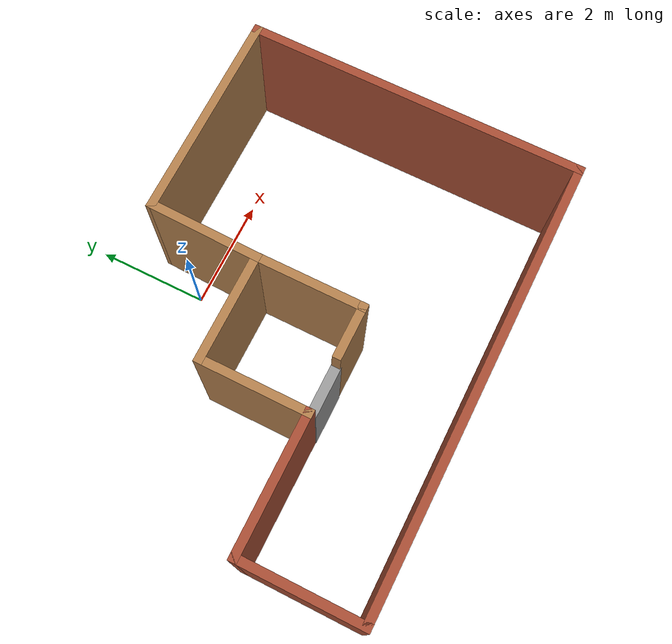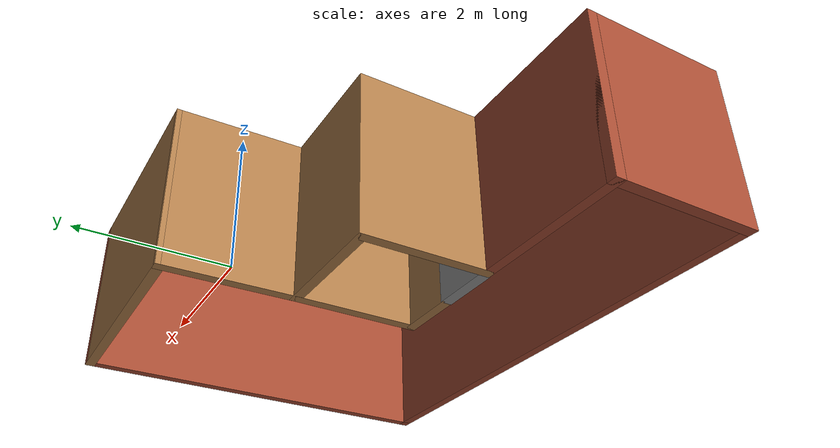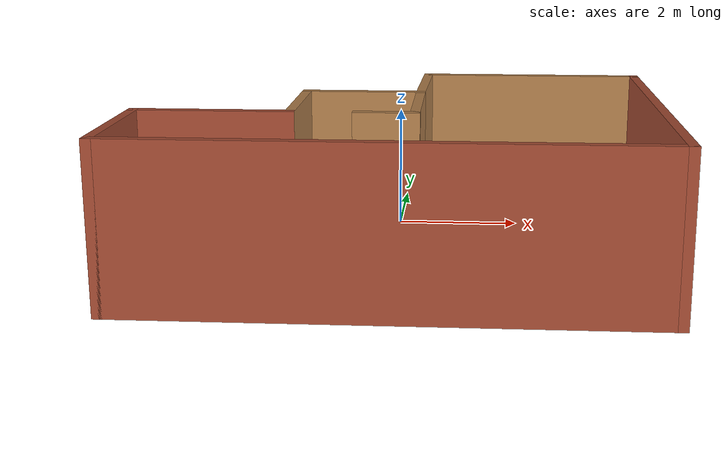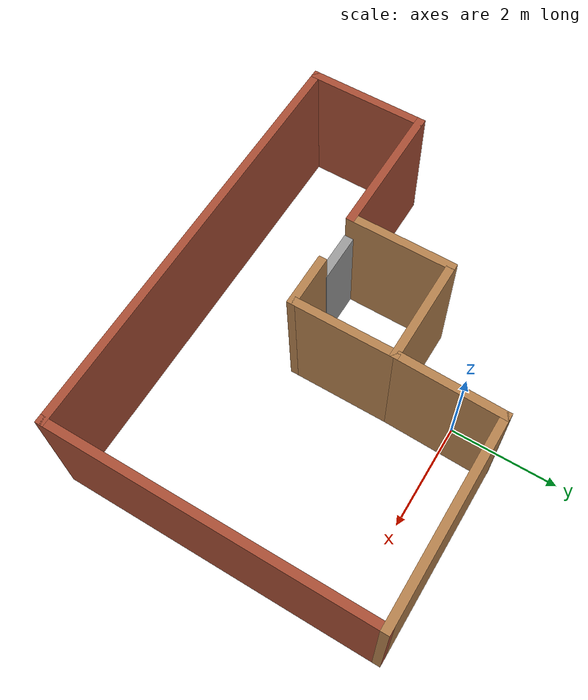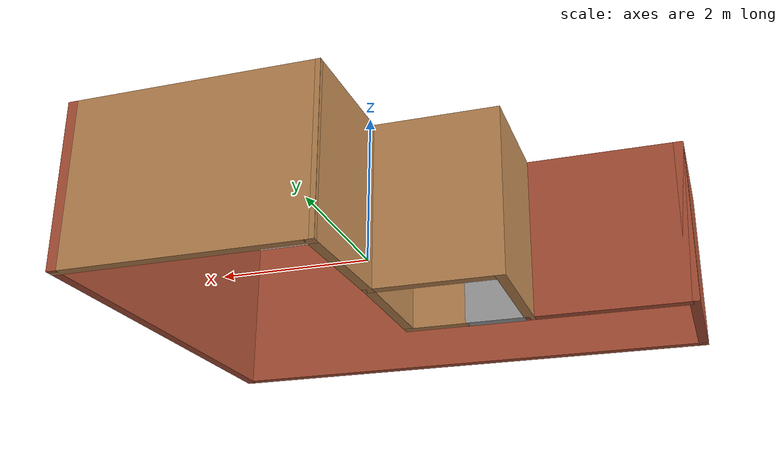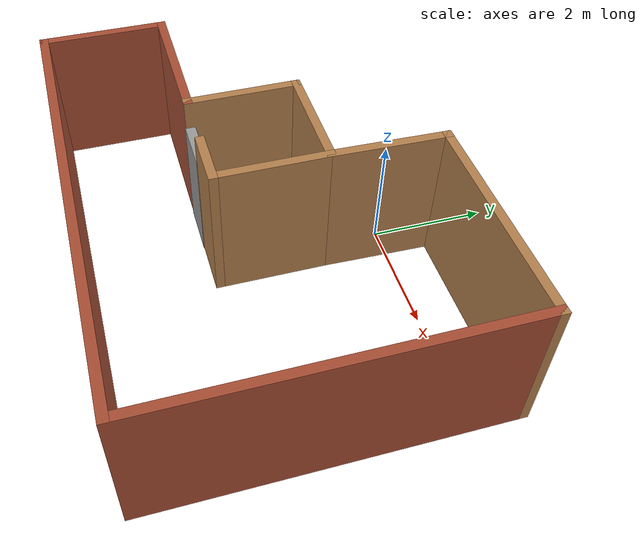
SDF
<?xml version='1.0'?>
<sdf version='1.7'>
  <model name='Pieza_simple'>
    <pose>0.115 -2.11403 0 0 -0 0</pose>
    <link name='Door_0'>
      <collision name='Door_0_Collision'>
        <geometry>
          <box>
            <size>0.9 0.17 2</size>
          </box>
        </geometry>
        <pose>0 0 1 0 -0 0</pose>
      </collision>
      <visual name='Door_0_Visual'>
        <pose>0 0 1 0 -0 0</pose>
        <geometry>
          <box>
            <size>0.9 0.17 2</size>
          </box>
        </geometry>
        <material>
          <script>
            <uri>file://media/materials/scripts/gazebo.material</uri>
            <name>Gazebo/Grey</name>
          </script>
        </material>
      </visual>
      <pose>-1.065 -0.825973 0 0 -0 0</pose>
    </link>
    <link name='Wall_1'>
      <collision name='Wall_1_Collision'>
        <geometry>
          <box>
            <size>2 0.15 2.5</size>
          </box>
        </geometry>
        <pose>0 0 1.25 0 -0 0</pose>
      </collision>
      <visual name='Wall_1_Visual'>
        <pose>0 0 1.25 0 -0 0</pose>
        <geometry>
          <box>
            <size>2 0.15 2.5</size>
          </box>
        </geometry>
        <material>
          <script>
            <uri>file://media/materials/scripts/gazebo.material</uri>
            <name>Gazebo/Wood</name>
          </script>
          <ambient>1 1 1 1</ambient>
        </material>
        <meta>
          <layer>0</layer>
        </meta>
      </visual>
      <pose>-1.575 0.099027 0 0 -0 1.5708</pose>
    </link>
    <link name='Wall_10'>
      <collision name='Wall_10_Collision'>
        <geometry>
          <box>
            <size>6 0.15 2.5</size>
          </box>
        </geometry>
        <pose>0 0 1.25 0 -0 0</pose>
      </collision>
      <visual name='Wall_10_Visual'>
        <pose>0 0 1.25 0 -0 0</pose>
        <geometry>
          <box>
            <size>6 0.15 2.5</size>
          </box>
        </geometry>
        <material>
          <script>
            <uri>file://media/materials/scripts/gazebo.material</uri>
            <name>Gazebo/Bricks</name>
          </script>
          <ambient>1 1 1 1</ambient>
        </material>
        <meta>
          <layer>0</layer>
        </meta>
      </visual>
      <pose>3.925 -0.000973 0 0 -0 1.5708</pose>
    </link>
    <link name='Wall_11'>
      <collision name='Wall_11_Collision'>
        <geometry>
          <box>
            <size>3.75 0.15 2.5</size>
          </box>
        </geometry>
        <pose>0 0 1.25 0 -0 0</pose>
      </collision>
      <visual name='Wall_11_Visual'>
        <pose>0 0 1.25 0 -0 0</pose>
        <geometry>
          <box>
            <size>3.75 0.15 2.5</size>
          </box>
        </geometry>
        <material>
          <script>
            <uri>file://media/materials/scripts/gazebo.material</uri>
            <name>Gazebo/Wood</name>
          </script>
          <ambient>1 1 1 1</ambient>
        </material>
        <meta>
          <layer>0</layer>
        </meta>
      </visual>
      <pose>2.125 2.92403 0 0 -0 3.14159</pose>
    </link>
    <link name='Wall_12'>
      <collision name='Wall_12_Collision'>
        <geometry>
          <box>
            <size>2.05066 0.15 2.5</size>
          </box>
        </geometry>
        <pose>0 0 1.25 0 -0 0</pose>
      </collision>
      <visual name='Wall_12_Visual'>
        <pose>0 0 1.25 0 -0 0</pose>
        <geometry>
          <box>
            <size>2.05066 0.15 2.5</size>
          </box>
        </geometry>
        <material>
          <script>
            <uri>file://media/materials/scripts/gazebo.material</uri>
            <name>Gazebo/Wood</name>
          </script>
          <ambient>1 1 1 1</ambient>
        </material>
        <meta>
          <layer>0</layer>
        </meta>
      </visual>
      <pose>0.3 1.97403 0 0 -0 -1.59711</pose>
    </link>
    <link name='Wall_2'>
      <collision name='Wall_2_Collision'>
        <geometry>
          <box>
            <size>2 0.15 2.5</size>
          </box>
        </geometry>
        <pose>0 0 1.25 0 -0 0</pose>
      </collision>
      <visual name='Wall_2_Visual'>
        <pose>0 0 1.25 0 -0 0</pose>
        <geometry>
          <box>
            <size>2 0.15 2.5</size>
          </box>
        </geometry>
        <material>
          <script>
            <uri>file://media/materials/scripts/gazebo.material</uri>
            <name>Gazebo/Wood</name>
          </script>
          <ambient>1 1 1 1</ambient>
        </material>
        <meta>
          <layer>0</layer>
        </meta>
      </visual>
      <pose>-0.65 1.02403 0 0 -0 0</pose>
    </link>
    <link name='Wall_3'>
      <collision name='Wall_3_Collision'>
        <geometry>
          <box>
            <size>2 0.15 2.5</size>
          </box>
        </geometry>
        <pose>0 0 1.25 0 -0 0</pose>
      </collision>
      <visual name='Wall_3_Visual'>
        <pose>0 0 1.25 0 -0 0</pose>
        <geometry>
          <box>
            <size>2 0.15 2.5</size>
          </box>
        </geometry>
        <material>
          <script>
            <uri>file://media/materials/scripts/gazebo.material</uri>
            <name>Gazebo/Wood</name>
          </script>
          <ambient>1 1 1 1</ambient>
        </material>
        <meta>
          <layer>0</layer>
        </meta>
      </visual>
      <pose>0.275 0.099027 0 0 -0 -1.5708</pose>
    </link>
    <link name='Wall_4'>
      <collision name='Wall_4_Collision'>
        <geometry>
          <box>
            <size>1 0.15 2.5</size>
          </box>
        </geometry>
        <pose>0 0 1.25 0 -0 0</pose>
      </collision>
      <visual name='Wall_4_Visual'>
        <pose>0 0 1.25 0 -0 0</pose>
        <geometry>
          <box>
            <size>1 0.15 2.5</size>
          </box>
        </geometry>
        <material>
          <script>
            <uri>file://media/materials/scripts/gazebo.material</uri>
            <name>Gazebo/Wood</name>
          </script>
          <ambient>1 1 1 1</ambient>
        </material>
        <meta>
          <layer>0</layer>
        </meta>
      </visual>
      <pose>-0.15 -0.825973 0 0 -0 3.14159</pose>
    </link>
    <link name='Wall_6'>
      <collision name='Wall_6_Collision'>
        <geometry>
          <box>
            <size>2.5 0.15 2.5</size>
          </box>
        </geometry>
        <pose>0 0 1.25 0 -0 0</pose>
      </collision>
      <visual name='Wall_6_Visual'>
        <pose>0 0 1.25 0 -0 0</pose>
        <geometry>
          <box>
            <size>2.5 0.15 2.5</size>
          </box>
        </geometry>
        <material>
          <script>
            <uri>file://media/materials/scripts/gazebo.material</uri>
            <name>Gazebo/Bricks</name>
          </script>
          <ambient>1 1 1 1</ambient>
        </material>
        <meta>
          <layer>0</layer>
        </meta>
      </visual>
      <pose>-2.75 -0.825973 0 0 -0 3.14159</pose>
    </link>
    <link name='Wall_7'>
      <collision name='Wall_7_Collision'>
        <geometry>
          <box>
            <size>2.25 0.15 2.5</size>
          </box>
        </geometry>
        <pose>0 0 1.25 0 -0 0</pose>
      </collision>
      <visual name='Wall_7_Visual'>
        <pose>0 0 1.25 0 -0 0</pose>
        <geometry>
          <box>
            <size>2.25 0.15 2.5</size>
          </box>
        </geometry>
        <material>
          <script>
            <uri>file://media/materials/scripts/gazebo.material</uri>
            <name>Gazebo/Bricks</name>
          </script>
          <ambient>1 1 1 1</ambient>
        </material>
        <meta>
          <layer>0</layer>
        </meta>
      </visual>
      <pose>-3.925 -1.87597 0 0 -0 -1.5708</pose>
    </link>
    <link name='Wall_8'>
      <collision name='Wall_8_Collision'>
        <geometry>
          <box>
            <size>8 0.15 2.5</size>
          </box>
        </geometry>
        <pose>0 0 1.25 0 -0 0</pose>
      </collision>
      <visual name='Wall_8_Visual'>
        <pose>0 0 1.25 0 -0 0</pose>
        <geometry>
          <box>
            <size>8 0.15 2.5</size>
          </box>
        </geometry>
        <material>
          <script>
            <uri>file://media/materials/scripts/gazebo.material</uri>
            <name>Gazebo/Bricks</name>
          </script>
          <ambient>1 1 1 1</ambient>
        </material>
        <meta>
          <layer>0</layer>
        </meta>
      </visual>
      <pose>-0 -2.92597 0 0 -0 0</pose>
    </link>
    <static>1</static>
  </model>
</sdf>
